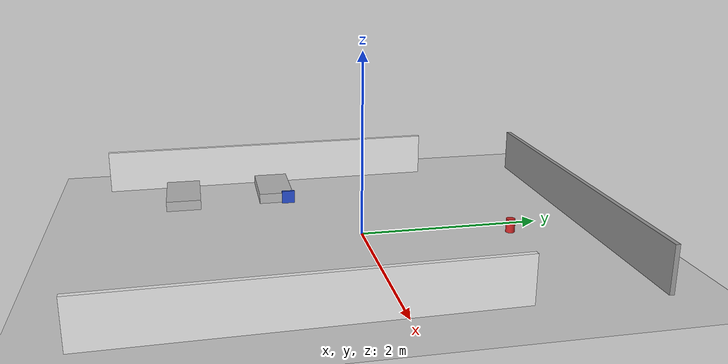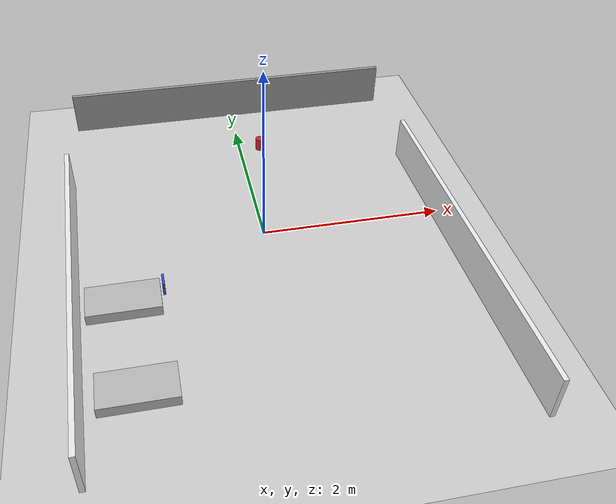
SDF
<sdf version='1.7'>
  <world name='hospital_robotic_env_compact'>
    <light name='sun' type='directional'>
      <cast_shadows>1</cast_shadows>
      <pose>0 0 5 0 -0 0</pose> <!-- 조명 높이도 절반으로 조정 -->
      <diffuse>0.8 0.8 0.8 1</diffuse>
      <specular>0.2 0.2 0.2 1</specular>
      <attenuation>
        <range>500</range>
        <constant>0.9</constant>
      </attenuation>
      <direction>-0.5 0.1 -0.9</direction>
    </light>

    <model name='ground_plane'>
      <static>1</static>
      <link name='link'>
        <collision name='collision'>
          <geometry><plane><normal>0 0 1</normal><size>50 50</size></plane></geometry> <!-- 바닥 사이즈 축소 -->
        </collision>
        <visual name='visual'>
          <geometry><plane><normal>0 0 1</normal><size>50 50</size></plane></geometry>
          <material><script><name>Gazebo/Grey</name></script></material>
        </visual>
      </link>
    </model>

    <!-- [1] 간호사 스테이션 벽 (Y: 4.93 -> 2.47) -->
    <model name='nurse_station_wall'>
      <pose>0 2.47 0.25 0 -0 0</pose>
      <link name='link'>
        <collision name='collision'><geometry><box><size>4.0 0.05 0.5</size></box></geometry></collision>
        <visual name='visual'><geometry><box><size>4.0 0.05 0.5</size></box></geometry>
          <material><script><name>Gazebo/Grey</name></script></material>
        </visual>
      </link>
      <static>1</static>
    </model>

    <!-- [2] 복도 및 병실 벽면 (좌표 및 크기 50% 압축) -->
    <model name='hallway_wall_top'>
      <pose>-2.03 -0.79 0.25 0 -0 1.58738</pose>
      <link name='link'>
        <visual name='visual'><geometry><box><size>4.0 0.05 0.5</size></box></geometry>
          <material><script><name>Gazebo/White</name></script></material>
        </visual>
      </link>
      <static>1</static>
    </model>

    <model name='hallway_wall_top_clone_0'>
      <pose>1.96 -0.84 0.25 0 -0 1.58738</pose>
      <link name='link'>
        <visual name='visual'><geometry><box><size>4.0 0.05 0.5</size></box></geometry>
          <material><script><name>Gazebo/White</name></script></material>
        </visual>
      </link>
      <static>1</static>
    </model>

    <!-- [3] 침대 배치 (Size: 1.5x0.8 -> 0.75x0.4 / Height: 0.15) -->
    <!-- Bed 1 -->
    <model name='bed_1_compact'>
      <pose>-1.57 -0.8 0.05 0 -0 0</pose>
      <link name='link'>
        <visual name='visual'><geometry><box><size>0.75 0.4 0.12</size></box></geometry></visual>
      </link>
      <static>1</static>
    </model>

    <!-- Bed 3 (기존 -3.8 -> -1.9) -->
    <model name='bed_3_compact'>
      <pose>-1.5 -1.9 0.05 0 -0 0</pose>
      <link name='link'>
        <visual name='visual'><geometry><box><size>0.75 0.4 0.12</size></box></geometry></visual>
      </link>
      <static>1</static>
    </model>

    <!-- [4] 파란색 도킹 마커 (Marker) -->
    <model name='marker_1_compact'>
      <pose>-1.16 -0.66 0.07 0 -0 0</pose>
      <link name='link'>
        <visual name='visual'>
          <geometry><box><size>0.025 0.15 0.15</size></box></geometry>
          <material><script><name>Gazebo/Blue</name></script></material>
        </visual>
      </link>
      <static>1</static>
    </model>

    <!-- [5] 시나리오 2용 붉은 장애물 -->
    <model name='low_obstacle_1_compact'>
      <pose>0.25 1.61 0.075 0 -0 0</pose>
      <link name='link'>
        <visual name='visual'>
          <geometry><cylinder><radius>0.05</radius><length>0.15</length></cylinder></geometry>
          <material><script><name>Gazebo/Red</name></script></material>
        </visual>
      </link>
      <static>1</static>
    </model>

    <!-- 터틀봇(휠체어) 초기 위치 (기존 -1.59, 0.94 -> -0.79, 0.47) -->
    <!-- 주의: 로봇 모델 자체의 URDF는 이 SDF가 아닌 별도 파일에서 관리됩니다. -->

    <physics type='ode'>
      <max_step_size>0.001</max_step_size>
      <real_time_factor>1</real_time_factor>
      <real_time_update_rate>1000</real_time_update_rate>
    </physics>

    <scene>
      <ambient>0.4 0.4 0.4 1</ambient>
      <background>0.7 0.7 0.7 1</background>
      <shadows>1</shadows>
    </scene>
  </world>
</sdf>
